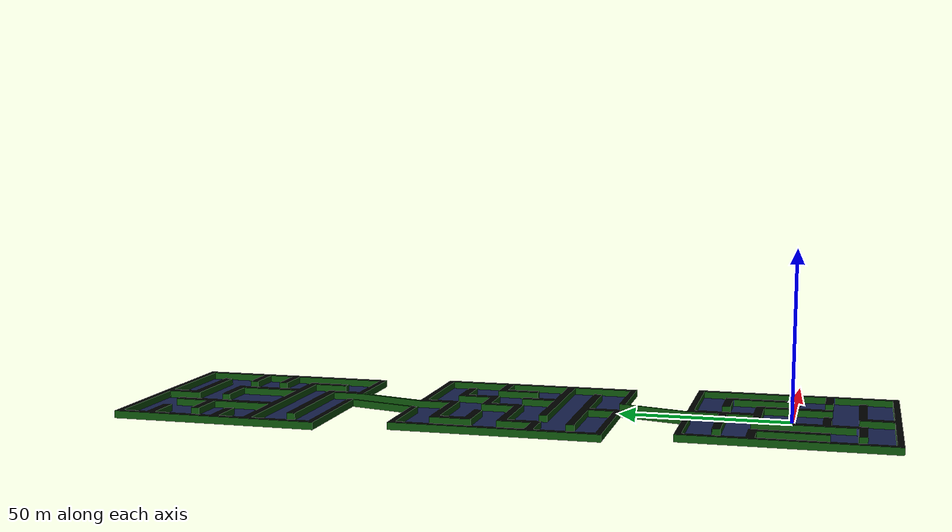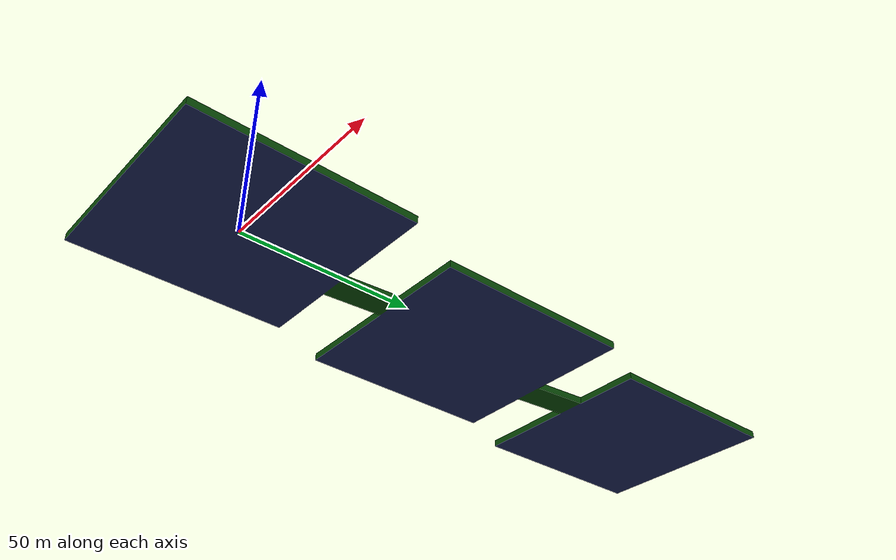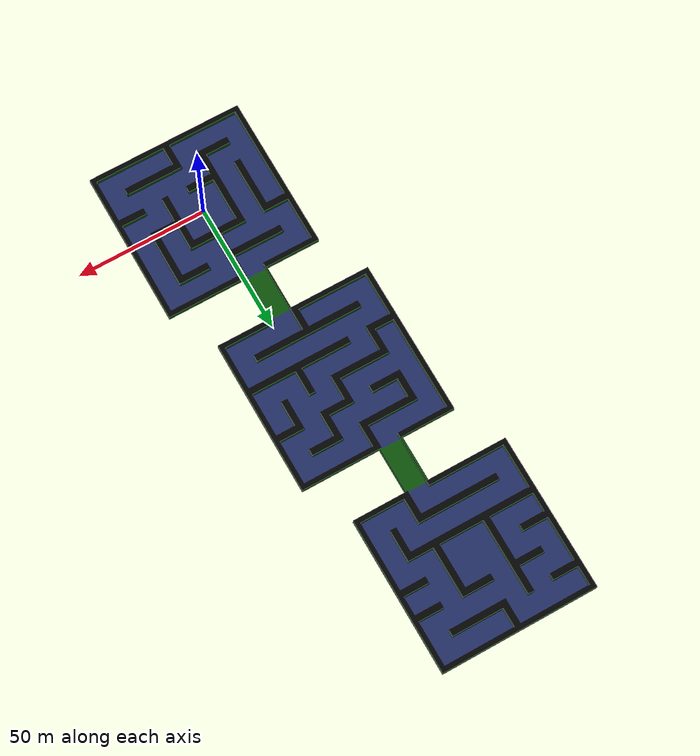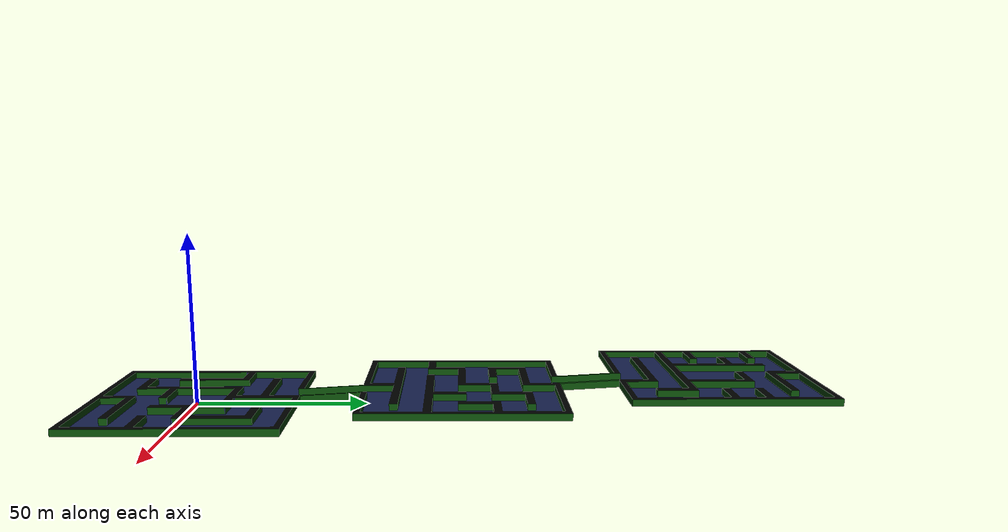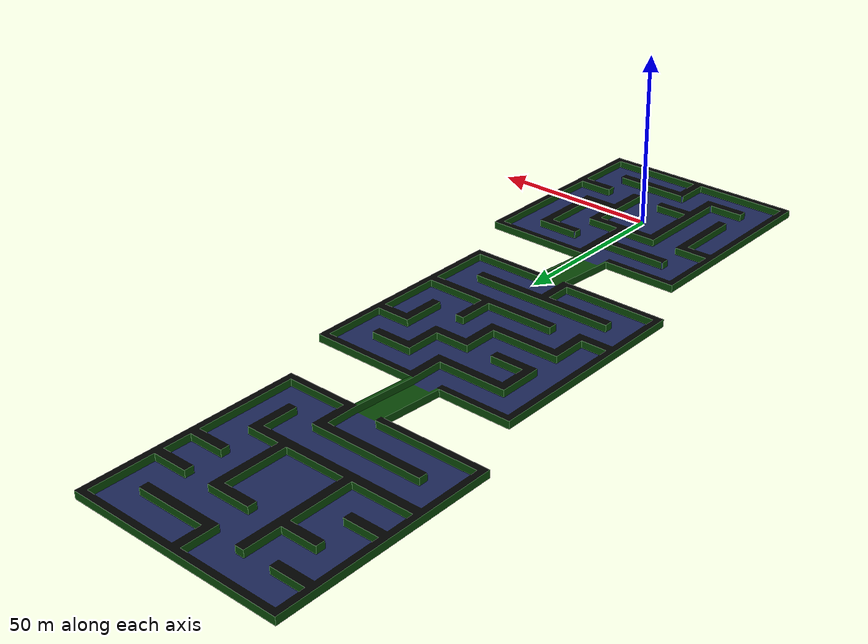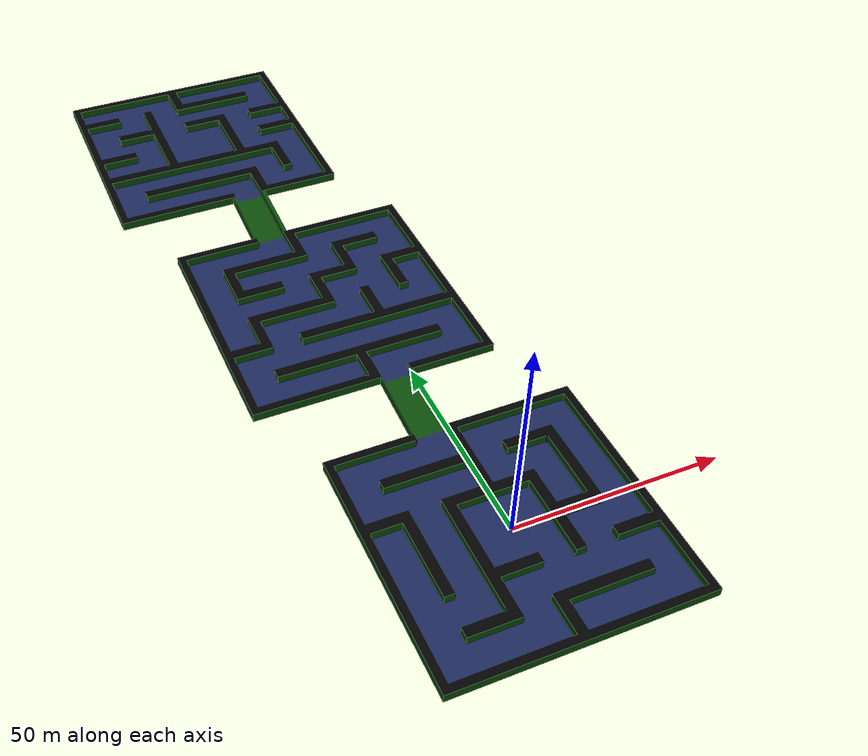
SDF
<?xml version="1.0" ?>
<sdf version="1.5">
  <model name="maze-3levels">
    <static>true</static>
    <pose>0 0 0 0 0 0</pose>
    <link name="link">
      <collision name="collision">
        <geometry>
          <mesh>
            <uri>model://maze-3levels/Maze-3levels.dae</uri>
            <scale>3 3 1</scale>
          </mesh>
        </geometry>
      </collision>
      <visual name="visual">
        <geometry>
          <mesh>
            <uri>model://maze-3levels/Maze-3levels.dae</uri>
            <scale>3 3 1</scale>
          </mesh>
        </geometry>
        <cast_shadows>false</cast_shadows>
        <material>
        </material>
      </visual>
    </link>
  </model>
</sdf>
